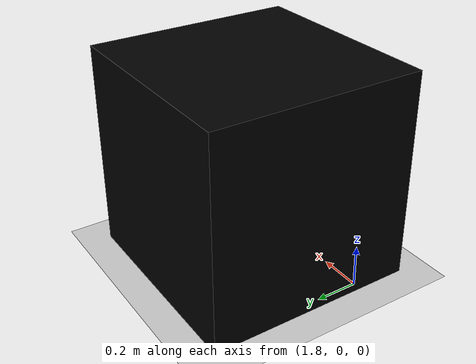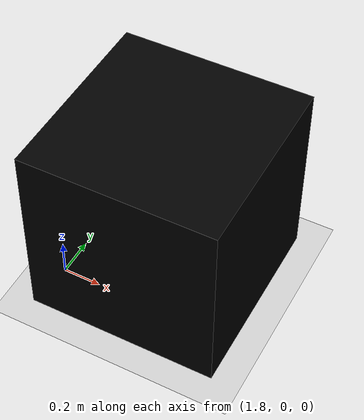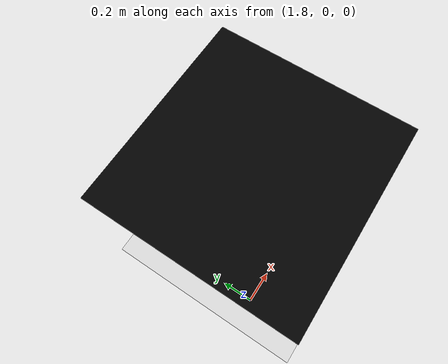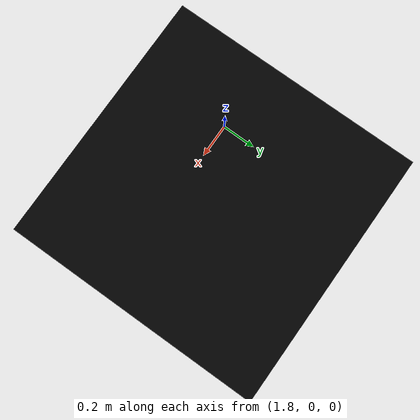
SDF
<?xml version="1.0"?>
<sdf version='1.10'>
  <world name='simple_world'>

    <!-- Physics and Plugins -->
    <physics name='default_physics' type='ode'>
      <max_step_size>0.001</max_step_size>
      <real_time_factor>1.0</real_time_factor>
      <real_time_update_rate>1000</real_time_update_rate>
    </physics>

    <plugin name='gz::sim::systems::Physics' filename='gz-sim-physics-system'/>
    <plugin name='gz::sim::systems::UserCommands' filename='gz-sim-user-commands-system'/>
    <plugin name='gz::sim::systems::SceneBroadcaster' filename='gz-sim-scene-broadcaster-system'/>
    <plugin name='gz::sim::systems::Contact' filename='gz-sim-contact-system'/>
    <plugin filename="gz-sim-sensors-system" name="gz::sim::systems::Sensors">
      <render_engine>ogre2</render_engine>
    </plugin>
    <plugin filename="gz-sim-imu-system" name="gz::sim::systems::Imu"/>

    <gravity>0 0 -9.81</gravity>

    <!-- Light -->
    <light name='sun' type='directional'>
      <cast_shadows>true</cast_shadows>
      <pose>0 0 10 0 0 0</pose>
      <diffuse>0.8 0.8 0.8 1</diffuse>
      <specular>0.2 0.2 0.2 1</specular>
      <attenuation>
        <range>1000</range>
        <constant>0.9</constant>
        <linear>0.01</linear>
        <quadratic>0.001</quadratic>
      </attenuation>
      <direction>-0.5 0.1 -0.9</direction>
    </light>

    <!-- Ground Plane with default gray color -->
    <model name='ground_plane'>
      <static>true</static>
      <pose>0.0 0.0 0.0 0.0 0.0 0.0</pose>
      <link name='link'>
        <collision name='collision'>
          <geometry>
            <plane>
              <normal>0 0 1</normal>
              <size>100 100</size>
            </plane>
          </geometry>
        </collision>
        <visual name='visual'>
          <geometry>
            <plane>
              <normal>0 0 1</normal>
              <size>100 100</size>
            </plane>
          </geometry>
          <material>
            <ambient>0.8 0.8 0.8 1</ambient>
            <diffuse>0.8 0.8 0.8 1</diffuse>
            <specular>0.2 0.2 0.2 1</specular>
          </material>
        </visual>
      </link>
    </model>

    <!-- Test Box with black material -->
    <model name='test_box'>
      <static>true</static>
      <pose>2.26 0.26 0.5 0 0 0</pose>
      <link name='link'>
        <collision name='collision'>
          <geometry>
            <box>
              <size>1 1 1</size>
            </box>
          </geometry>
        </collision>
        <visual name='visual'>
          <geometry>
            <box>
              <size>1 1 1</size>
            </box>
          </geometry>
          <material>
            <ambient>0 0 0 1</ambient>
            <diffuse>0 0 0 1</diffuse>
            <specular>0.3 0.3 0.3 1</specular>
          </material>
        </visual>
      </link>
    </model>

  </world>
</sdf>
